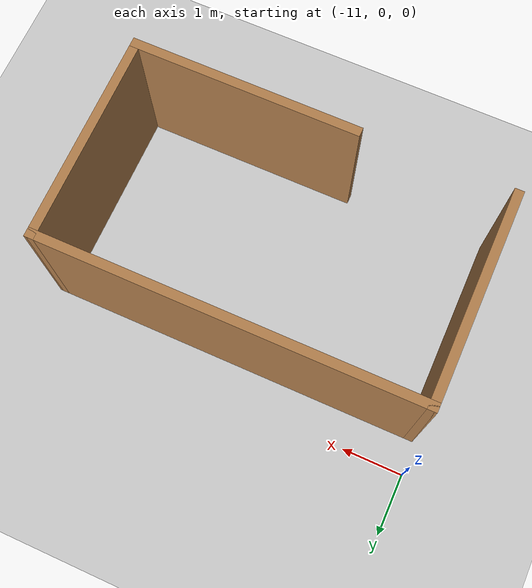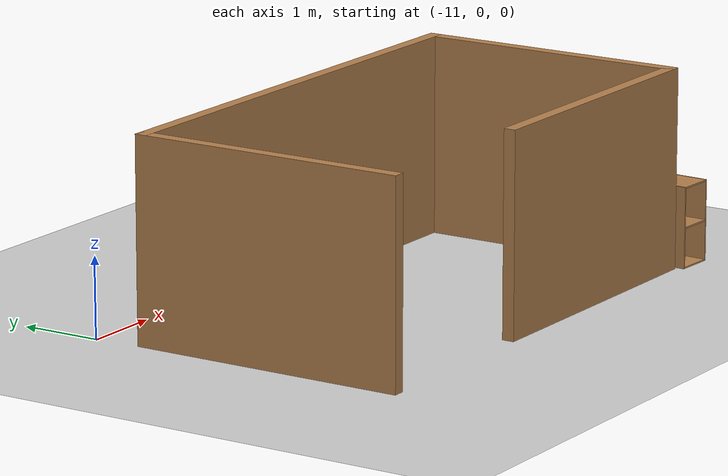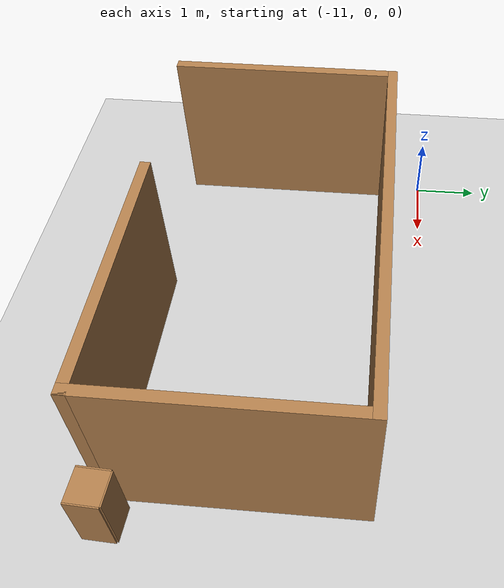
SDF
<sdf version="1.6">
 <world name="default">
  <light name="sun" type="directional">
   <pose>0 0 10 0 -0 0</pose>
   <diffuse>0.8 0.8 0.8 1</diffuse>
   <specular>0.2 0.2 0.2 1</specular>
   <attenuation>
    <range>1000</range>
    <constant>0.9</constant>
    <linear>0.01</linear>
    <quadratic>0.001</quadratic>
   </attenuation>
   <direction>-0.5 0.1 -0.9</direction>
  </light>
  <model name="ground_plane">
   <static>1</static>
   <link name="link">
    <collision name="collision">
     <geometry><plane><normal>0 0 1</normal><size>100 100</size></plane></geometry>
     <surface>
      <contact><collide_bitmask>65535</collide_bitmask></contact>
      <friction><ode><mu>100</mu><mu2>50</mu2></ode></friction>
     </surface>
    </collision>
    <visual name="visual">
     <cast_shadows>0</cast_shadows>
     <geometry><plane><normal>0 0 1</normal><size>100 100</size></plane></geometry>
     <material>
      <script><uri>file://media/materials/scripts/gazebo.material</uri><name>Gazebo/Grey</name></script>
     </material>
    </visual>
   </link>
  </model>
  <gravity>0 0 -9.8</gravity>
  <magnetic_field>6e-06 2.3e-05 -4.2e-05</magnetic_field>
  <atmosphere type="adiabatic"/>
  <physics name="default_physics" default="0" type="ode">
   <max_step_size>0.001</max_step_size>
   <real_time_factor>1</real_time_factor>
   <real_time_update_rate>1000</real_time_update_rate>
  </physics>
  <scene><ambient>0.4 0.4 0.4 1</ambient><background>0.7 0.7 0.7 1</background><shadows>1</shadows></scene>
  <audio><device>default</device></audio>
  <spherical_coordinates>
   <surface_model>EARTH_WGS84</surface_model>
   <latitude_deg>0</latitude_deg>
   <longitude_deg>0</longitude_deg>
   <elevation>0</elevation>
   <heading_deg>0</heading_deg>
  </spherical_coordinates>
  <model name="first_world">
   <pose>-7.8337 -2.3053 0 0 -0 0</pose>
   <link name="Wall_0">
    <collision name="Wall_0_Collision">
     <geometry><box><size>3.5 0.15 2.5</size></box></geometry>
     <pose>0 0 1.25 0 -0 0</pose>
    </collision>
    <visual name="Wall_0_Visual">
     <pose>0 0 1.25 0 -0 0</pose>
     <geometry><box><size>3.5 0.15 2.5</size></box></geometry>
     <material>
      <script><uri>file://media/materials/scripts/gazebo.material</uri><name>Gazebo/Wood</name></script>
      <ambient>1 1 1 1</ambient>
     </material>
     <meta><layer>0</layer></meta>
    </visual>
    <pose>-3.05 0 0 0 -0 1.5708</pose>
   </link>
   <link name="Wall_1">
    <collision name="Wall_1_Collision">
     <geometry><box><size>6.25 0.15 2.5</size></box></geometry>
     <pose>0 0 1.25 0 -0 0</pose>
    </collision>
    <visual name="Wall_1_Visual">
     <pose>0 0 1.25 0 -0 0</pose>
     <geometry><box><size>6.25 0.15 2.5</size></box></geometry>
     <material>
      <script><uri>file://media/materials/scripts/gazebo.material</uri><name>Gazebo/Wood</name></script>
      <ambient>1 1 1 1</ambient>
     </material>
     <meta><layer>0</layer></meta>
    </visual>
    <pose>-0 1.675 0 0 -0 0</pose>
   </link>
   <link name="Wall_2">
    <collision name="Wall_2_Collision">
     <geometry><box><size>3.5 0.15 2.5</size></box></geometry>
     <pose>0 0 1.25 0 -0 0</pose>
    </collision>
    <visual name="Wall_2_Visual">
     <pose>0 0 1.25 0 -0 0</pose>
     <geometry><box><size>3.5 0.15 2.5</size></box></geometry>
     <material>
      <script><uri>file://media/materials/scripts/gazebo.material</uri><name>Gazebo/Wood</name></script>
      <ambient>1 1 1 1</ambient>
     </material>
     <meta><layer>0</layer></meta>
    </visual>
    <pose>3.05 0 0 0 -0 -1.5708</pose>
   </link>
   <link name="Wall_3">
    <collision name="Wall_3_Collision">
     <geometry><box><size>3.75 0.15 2.5</size></box></geometry>
     <pose>0 0 1.25 0 -0 0</pose>
    </collision>
    <visual name="Wall_3_Visual">
     <pose>0 0 1.25 0 -0 0</pose>
     <geometry><box><size>3.75 0.15 2.5</size></box></geometry>
     <material>
      <script><uri>file://media/materials/scripts/gazebo.material</uri><name>Gazebo/Wood</name></script>
      <ambient>1 1 1 1</ambient>
     </material>
     <meta><layer>0</layer></meta>
    </visual>
    <pose>1.25 -1.675 0 0 -0 3.14159</pose>
   </link>
   <static>1</static>
  </model>
  <model name="cabinet">
   <static>1</static>
   <link name="cabinet_bottom_plate">
    <inertial>
     <pose>0 0 -1 0 -0 0</pose>
     <inertia><ixx>2.05</ixx><ixy>0</ixy><ixz>0</ixz><iyy>2.05</iyy><iyz>0</iyz><izz>2.05</izz></inertia>
     <mass>25</mass>
    </inertial>
    <collision name="cabinet_bottom_plate_geom">
     <pose>0 0 0.01 0 -0 0</pose>
     <geometry><box><size>0.45 0.45 0.02</size></box></geometry>
    </collision>
    <visual name="cabinet_bottom_plate_geom_visual">
     <pose>0 0 0.01 0 -0 0</pose>
     <geometry><box><size>0.45 0.45 0.02</size></box></geometry>
     <material>
      <script><uri>file://media/materials/scripts/gazebo.material</uri><name>Gazebo/Wood</name></script>
     </material>
    </visual>
    <collision name="cabinet_bottom_plate_geom_cabinet_back_plate">
     <pose>0.235 0 0.51 0 -0 0</pose>
     <geometry><box><size>0.02 0.45 1.02</size></box></geometry>
    </collision>
    <visual name="cabinet_bottom_plate_geom_cabinet_back_plate_visual">
     <pose>0.235 0 0.51 0 -0 0</pose>
     <geometry><box><size>0.02 0.45 1.02</size></box></geometry>
     <material>
      <script><uri>file://media/materials/scripts/gazebo.material</uri><name>Gazebo/Wood</name></script>
     </material>
    </visual>
    <collision name="cabinet_bottom_plate_geom_cabinet_left_plate">
     <pose>0 0.235 0.51 0 -0 0</pose>
     <geometry><box><size>0.45 0.02 1.02</size></box></geometry>
    </collision>
    <visual name="cabinet_bottom_plate_geom_cabinet_left_plate_visual">
     <pose>0 0.235 0.51 0 -0 0</pose>
     <geometry><box><size>0.45 0.02 1.02</size></box></geometry>
     <material>
      <script><uri>file://media/materials/scripts/gazebo.material</uri><name>Gazebo/Wood</name></script>
     </material>
    </visual>
    <collision name="cabinet_bottom_plate_geom_cabinet_middle_plate">
     <pose>0 0 0.51 0 -0 0</pose>
     <geometry><box><size>0.45 0.45 0.02</size></box></geometry>
    </collision>
    <visual name="cabinet_bottom_plate_geom_cabinet_middle_plate_visual">
     <pose>0 0 0.51 0 -0 0</pose>
     <geometry><box><size>0.45 0.45 0.02</size></box></geometry>
     <material>
      <script><uri>file://media/materials/scripts/gazebo.material</uri><name>Gazebo/Wood</name></script>
     </material>
    </visual>
    <collision name="cabinet_bottom_plate_geom_cabinet_right_plate">
     <pose>0 -0.235 0.51 0 -0 0</pose>
     <geometry><box><size>0.45 0.02 1.02</size></box></geometry>
    </collision>
    <visual name="cabinet_bottom_plate_geom_cabinet_right_plate_visual">
     <pose>0 -0.235 0.51 0 -0 0</pose>
     <geometry><box><size>0.45 0.02 1.02</size></box></geometry>
     <material>
      <script><uri>file://media/materials/scripts/gazebo.material</uri><name>Gazebo/Wood</name></script>
     </material>
    </visual>
    <collision name="cabinet_bottom_plate_geom_cabinet_top_plate">
     <pose>0 0 1.01 0 -0 0</pose>
     <geometry><box><size>0.45 0.45 0.02</size></box></geometry>
    </collision>
    <visual name="cabinet_bottom_plate_geom_cabinet_top_plate_visual">
     <pose>0 0 1.01 0 -0 0</pose>
     <geometry><box><size>0.45 0.45 0.02</size></box></geometry>
     <material>
      <script><uri>file://media/materials/scripts/gazebo.material</uri><name>Gazebo/Wood</name></script>
     </material>
    </visual>
   </link>
   <pose>-4.40234 -3.93691 0 0 -0 1.52428</pose>
  </model>
 </world>
</sdf>
